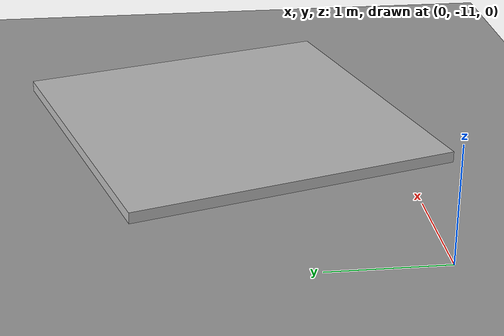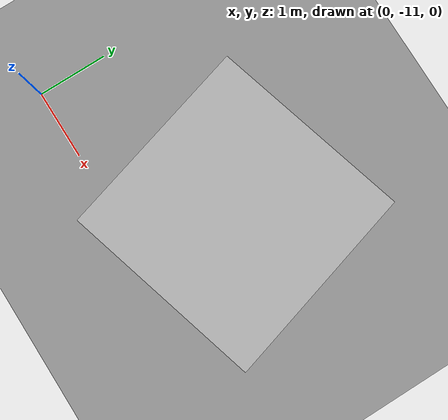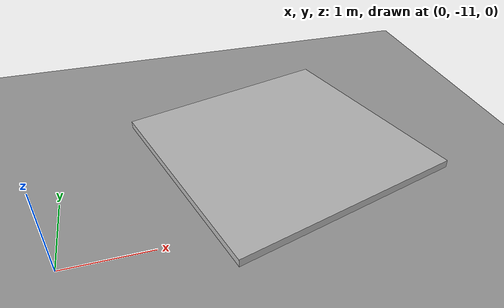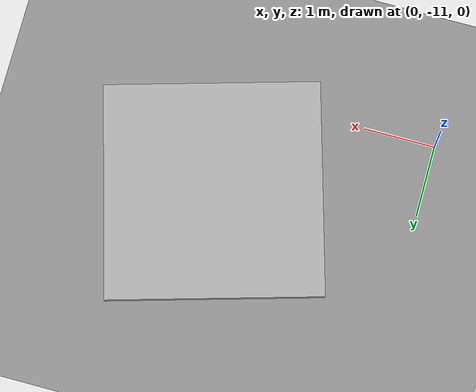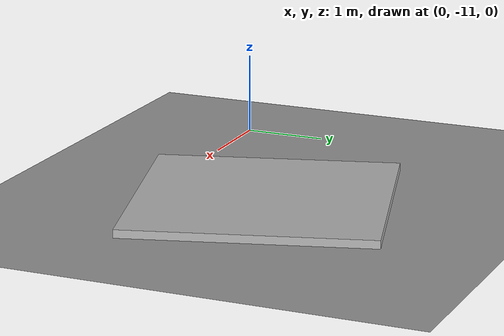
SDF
<?xml version="1.0" ?>
<sdf version="1.5">
  <world name="default">
    <!-- A global light source -->
    <include>
      <uri>model://sun</uri>
    </include>
    <!-- A ground plane -->
    <include>
      <uri>model://ground_plane_custom</uri>
    </include>
    <include>
      <uri>model://moving_platform</uri>
    </include>
    <physics name='default_physics' default='0' type='ode'>
      <gravity>0 0 -9.8066</gravity>
      <ode>
        <solver>
          <type>quick</type>
          <iters>10</iters>
          <sor>1.3</sor>
          <use_dynamic_moi_rescaling>0</use_dynamic_moi_rescaling>
        </solver>
        <constraints>
          <cfm>0</cfm>
          <erp>0.2</erp>
          <contact_max_correcting_vel>100</contact_max_correcting_vel>
          <contact_surface_layer>0.001</contact_surface_layer>
        </constraints>
      </ode>
      <max_step_size>0.004</max_step_size>
      <real_time_factor>1</real_time_factor>
      <real_time_update_rate>250</real_time_update_rate>
      <magnetic_field>6.0e-6 2.3e-5 -4.2e-5</magnetic_field>
    </physics>
  </world>
</sdf>

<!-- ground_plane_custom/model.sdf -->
<sdf version="1.5">
  <model name="ground_plane">
    <static>true</static>
    <link name="link">
      <collision name="collision">
        <geometry>
          <plane>
            <normal>0 0 1</normal>
            <size>2500 2500</size>
          </plane>
        </geometry>
        <surface>
          <contact>
             <collide_bitmask>65535</collide_bitmask>
          </contact>
          <friction>
            <ode>
              <mu>10</mu>
              <mu2>10</mu2>
            </ode>
          </friction>
        </surface>
      </collision>
      <visual name="visual">
        <cast_shadows>false</cast_shadows>
        <geometry>
          <plane>
            <normal>0 0 1</normal>
            <size>2500 2500</size>
          </plane>
        </geometry>
        <material>
          <script>
            <uri>file://media/materials/scripts/gazebo.material</uri>
            <name>Gazebo/Grey</name>
          </script>
        </material>
      </visual>
    </link>
  </model>
</sdf>

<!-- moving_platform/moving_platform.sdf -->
<sdf version="1.4">
  <model name="moving_platform">
    <pose>2.7770 -9.6067 0.05 0 0 1.8522</pose>
    <static>false</static>
    <link name="link">
      <inertial>
        <mass>5.0</mass>
        <inertia> <!-- inertias are tricky to compute -->
          <!-- http://gazebosim.org/tutorials?tut=inertia&cat=build_robot -->
          <ixx>3.73915</ixx>       <!-- for a box: ixx = 0.083 * mass * (y*y + z*z) -->
          <ixy>0.0</ixy>         <!-- for a box: ixy = 0 -->
          <ixz>0.0</ixz>         <!-- for a box: ixz = 0 -->
          <iyy>3.73915</iyy>       <!-- for a box: iyy = 0.083 * mass * (x*x + z*z) -->
          <iyz>0.0</iyz>         <!-- for a box: iyz = 0 -->
          <izz>7.47</izz>       <!-- for a box: izz = 0.083 * mass * (x*x + y*y) -->
        </inertia>
      </inertial>
      <collision name="collision">
        <geometry>
          <box>
            <size>3 3 0.1</size>
          </box>
        </geometry>
      </collision>
      <visual name="visual">
        <geometry>
          <box>
            <size>3 3 0.1</size>
          </box>
        </geometry>
      </visual>
    </link>
    <plugin name="moving_platform" filename="libmoving_platform_plugin.so">
    <link_name>link</link_name>
    <UAV_model_name>plane_custom</UAV_model_name>
    <robotNamespace></robotNamespace>
    </plugin>
  </model>
</sdf>
